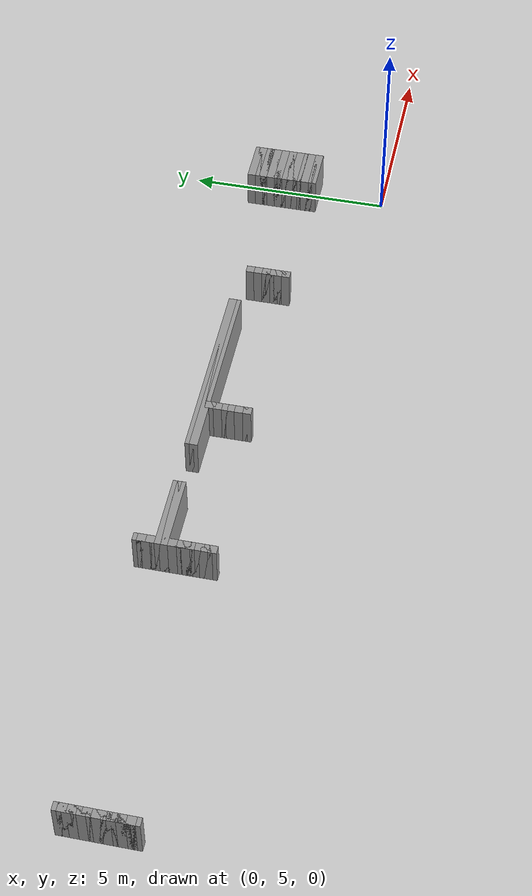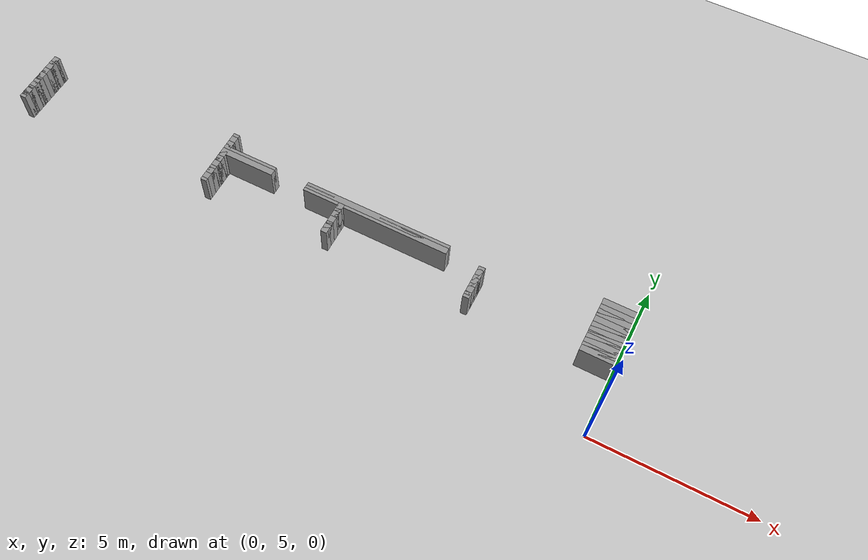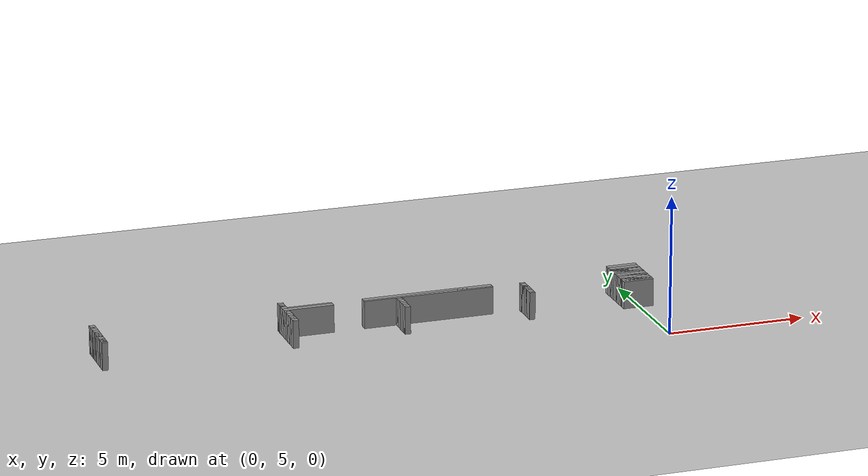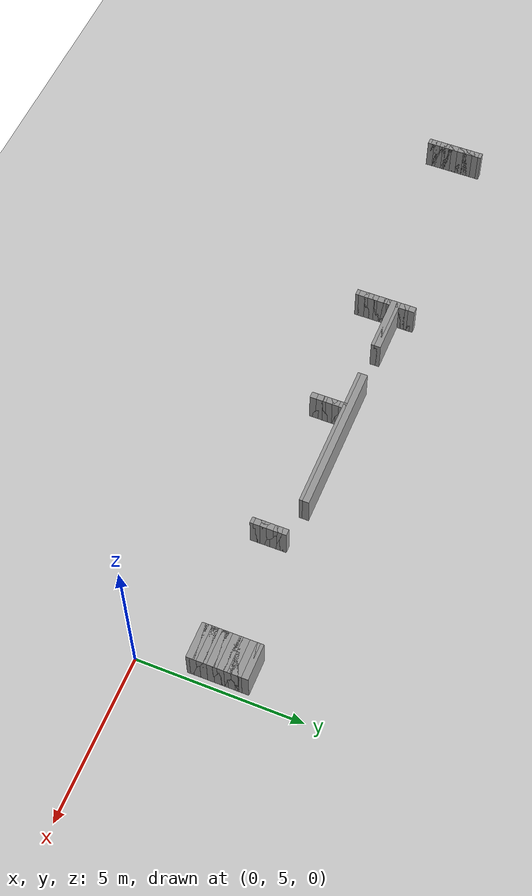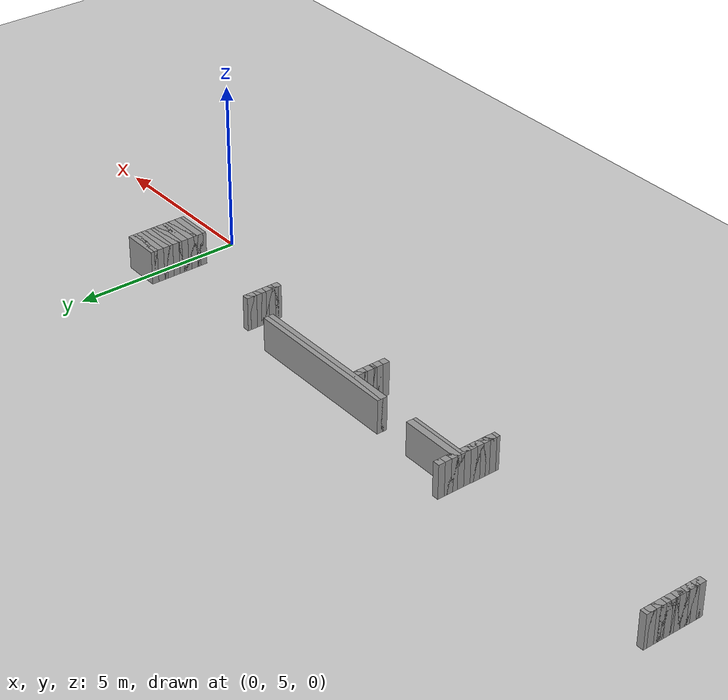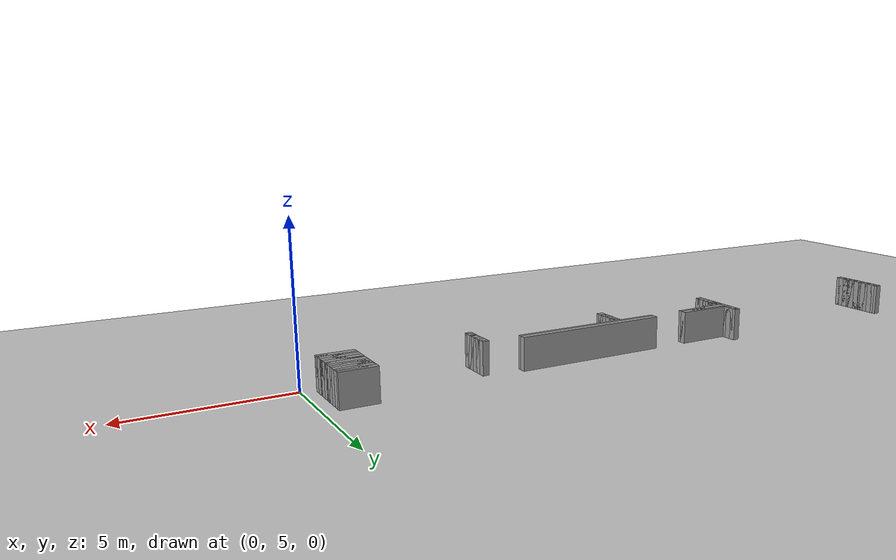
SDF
<sdf version="1.6">
 <world name="GridMap">
  <include><uri>model://sun</uri></include>
  <include><uri>model://ground_plane</uri></include>
  <model name="GridMap">
   <link name="Wall_(131.0,66.0)">
    <collision name="Wall_(131.0,66.0)_Collision">
     <geometry><box><size>0.2 0.2 1.0</size></box></geometry>
     <pose>-13.100000000000001 6.6000000000000005 0.5 0 -0 0</pose>
    </collision>
    <visual name="Wall_(131.0,66.0)_Visual">
     <geometry><box><size>0.2 0.2 1.0</size></box></geometry>
     <pose>-13.100000000000001 6.6000000000000005 0.5 0 -0 0</pose>
     <material>
      <script><uri>file://media/materials/scripts/gazebo.material</uri><name>Gazebo/Grey</name></script>
      <ambient>1 1 1 1</ambient>
     </material>
     <meta><layer>0</layer></meta>
    </visual>
    <pose>0 0 0.5 0 -0 0</pose>
   </link>
   <link name="Wall_(198.0,66.0)">
    <collision name="Wall_(198.0,66.0)_Collision">
     <geometry><box><size>0.2 0.2 1.0</size></box></geometry>
     <pose>-19.8 6.6000000000000005 0.5 0 -0 0</pose>
    </collision>
    <visual name="Wall_(198.0,66.0)_Visual">
     <geometry><box><size>0.2 0.2 1.0</size></box></geometry>
     <pose>-19.8 6.6000000000000005 0.5 0 -0 0</pose>
     <material>
      <script><uri>file://media/materials/scripts/gazebo.material</uri><name>Gazebo/Grey</name></script>
      <ambient>1 1 1 1</ambient>
     </material>
     <meta><layer>0</layer></meta>
    </visual>
    <pose>0 0 0.5 0 -0 0</pose>
   </link>
   <link name="Wall_(5.5,67.0)">
    <collision name="Wall_(5.5,67.0)_Collision">
     <geometry><box><size>1.1 0.2 1.0</size></box></geometry>
     <pose>-0.55 6.7 0.5 0 -0 0</pose>
    </collision>
    <visual name="Wall_(5.5,67.0)_Visual">
     <geometry><box><size>1.1 0.2 1.0</size></box></geometry>
     <pose>-0.55 6.7 0.5 0 -0 0</pose>
     <material>
      <script><uri>file://media/materials/scripts/gazebo.material</uri><name>Gazebo/Grey</name></script>
      <ambient>1 1 1 1</ambient>
     </material>
     <meta><layer>0</layer></meta>
    </visual>
    <pose>0 0 0.5 0 -0 0</pose>
   </link>
   <link name="Wall_(45.0,67.0)">
    <collision name="Wall_(45.0,67.0)_Collision">
     <geometry><box><size>0.2 0.2 1.0</size></box></geometry>
     <pose>-4.5 6.7 0.5 0 -0 0</pose>
    </collision>
    <visual name="Wall_(45.0,67.0)_Visual">
     <geometry><box><size>0.2 0.2 1.0</size></box></geometry>
     <pose>-4.5 6.7 0.5 0 -0 0</pose>
     <material>
      <script><uri>file://media/materials/scripts/gazebo.material</uri><name>Gazebo/Grey</name></script>
      <ambient>1 1 1 1</ambient>
     </material>
     <meta><layer>0</layer></meta>
    </visual>
    <pose>0 0 0.5 0 -0 0</pose>
   </link>
   <link name="Wall_(90.5,67.0)">
    <collision name="Wall_(90.5,67.0)_Collision">
     <geometry><box><size>0.2 0.2 1.0</size></box></geometry>
     <pose>-9.05 6.7 0.5 0 -0 0</pose>
    </collision>
    <visual name="Wall_(90.5,67.0)_Visual">
     <geometry><box><size>0.2 0.2 1.0</size></box></geometry>
     <pose>-9.05 6.7 0.5 0 -0 0</pose>
     <material>
      <script><uri>file://media/materials/scripts/gazebo.material</uri><name>Gazebo/Grey</name></script>
      <ambient>1 1 1 1</ambient>
     </material>
     <meta><layer>0</layer></meta>
    </visual>
    <pose>0 0 0.5 0 -0 0</pose>
   </link>
   <link name="Wall_(131.0,67.0)">
    <collision name="Wall_(131.0,67.0)_Collision">
     <geometry><box><size>0.2 0.2 1.0</size></box></geometry>
     <pose>-13.100000000000001 6.7 0.5 0 -0 0</pose>
    </collision>
    <visual name="Wall_(131.0,67.0)_Visual">
     <geometry><box><size>0.2 0.2 1.0</size></box></geometry>
     <pose>-13.100000000000001 6.7 0.5 0 -0 0</pose>
     <material>
      <script><uri>file://media/materials/scripts/gazebo.material</uri><name>Gazebo/Grey</name></script>
      <ambient>1 1 1 1</ambient>
     </material>
     <meta><layer>0</layer></meta>
    </visual>
    <pose>0 0 0.5 0 -0 0</pose>
   </link>
   <link name="Wall_(198.0,67.0)">
    <collision name="Wall_(198.0,67.0)_Collision">
     <geometry><box><size>0.2 0.2 1.0</size></box></geometry>
     <pose>-19.8 6.7 0.5 0 -0 0</pose>
    </collision>
    <visual name="Wall_(198.0,67.0)_Visual">
     <geometry><box><size>0.2 0.2 1.0</size></box></geometry>
     <pose>-19.8 6.7 0.5 0 -0 0</pose>
     <material>
      <script><uri>file://media/materials/scripts/gazebo.material</uri><name>Gazebo/Grey</name></script>
      <ambient>1 1 1 1</ambient>
     </material>
     <meta><layer>0</layer></meta>
    </visual>
    <pose>0 0 0.5 0 -0 0</pose>
   </link>
   <link name="Wall_(5.5,68.0)">
    <collision name="Wall_(5.5,68.0)_Collision">
     <geometry><box><size>1.1 0.2 1.0</size></box></geometry>
     <pose>-0.55 6.800000000000001 0.5 0 -0 0</pose>
    </collision>
    <visual name="Wall_(5.5,68.0)_Visual">
     <geometry><box><size>1.1 0.2 1.0</size></box></geometry>
     <pose>-0.55 6.800000000000001 0.5 0 -0 0</pose>
     <material>
      <script><uri>file://media/materials/scripts/gazebo.material</uri><name>Gazebo/Grey</name></script>
      <ambient>1 1 1 1</ambient>
     </material>
     <meta><layer>0</layer></meta>
    </visual>
    <pose>0 0 0.5 0 -0 0</pose>
   </link>
   <link name="Wall_(45.0,68.0)">
    <collision name="Wall_(45.0,68.0)_Collision">
     <geometry><box><size>0.2 0.2 1.0</size></box></geometry>
     <pose>-4.5 6.800000000000001 0.5 0 -0 0</pose>
    </collision>
    <visual name="Wall_(45.0,68.0)_Visual">
     <geometry><box><size>0.2 0.2 1.0</size></box></geometry>
     <pose>-4.5 6.800000000000001 0.5 0 -0 0</pose>
     <material>
      <script><uri>file://media/materials/scripts/gazebo.material</uri><name>Gazebo/Grey</name></script>
      <ambient>1 1 1 1</ambient>
     </material>
     <meta><layer>0</layer></meta>
    </visual>
    <pose>0 0 0.5 0 -0 0</pose>
   </link>
   <link name="Wall_(90.5,68.0)">
    <collision name="Wall_(90.5,68.0)_Collision">
     <geometry><box><size>0.2 0.2 1.0</size></box></geometry>
     <pose>-9.05 6.800000000000001 0.5 0 -0 0</pose>
    </collision>
    <visual name="Wall_(90.5,68.0)_Visual">
     <geometry><box><size>0.2 0.2 1.0</size></box></geometry>
     <pose>-9.05 6.800000000000001 0.5 0 -0 0</pose>
     <material>
      <script><uri>file://media/materials/scripts/gazebo.material</uri><name>Gazebo/Grey</name></script>
      <ambient>1 1 1 1</ambient>
     </material>
     <meta><layer>0</layer></meta>
    </visual>
    <pose>0 0 0.5 0 -0 0</pose>
   </link>
   <link name="Wall_(131.0,68.0)">
    <collision name="Wall_(131.0,68.0)_Collision">
     <geometry><box><size>0.2 0.2 1.0</size></box></geometry>
     <pose>-13.100000000000001 6.800000000000001 0.5 0 -0 0</pose>
    </collision>
    <visual name="Wall_(131.0,68.0)_Visual">
     <geometry><box><size>0.2 0.2 1.0</size></box></geometry>
     <pose>-13.100000000000001 6.800000000000001 0.5 0 -0 0</pose>
     <material>
      <script><uri>file://media/materials/scripts/gazebo.material</uri><name>Gazebo/Grey</name></script>
      <ambient>1 1 1 1</ambient>
     </material>
     <meta><layer>0</layer></meta>
    </visual>
    <pose>0 0 0.5 0 -0 0</pose>
   </link>
   <link name="Wall_(198.0,68.0)">
    <collision name="Wall_(198.0,68.0)_Collision">
     <geometry><box><size>0.2 0.2 1.0</size></box></geometry>
     <pose>-19.8 6.800000000000001 0.5 0 -0 0</pose>
    </collision>
    <visual name="Wall_(198.0,68.0)_Visual">
     <geometry><box><size>0.2 0.2 1.0</size></box></geometry>
     <pose>-19.8 6.800000000000001 0.5 0 -0 0</pose>
     <material>
      <script><uri>file://media/materials/scripts/gazebo.material</uri><name>Gazebo/Grey</name></script>
      <ambient>1 1 1 1</ambient>
     </material>
     <meta><layer>0</layer></meta>
    </visual>
    <pose>0 0 0.5 0 -0 0</pose>
   </link>
   <link name="Wall_(5.5,69.0)">
    <collision name="Wall_(5.5,69.0)_Collision">
     <geometry><box><size>1.1 0.2 1.0</size></box></geometry>
     <pose>-0.55 6.9 0.5 0 -0 0</pose>
    </collision>
    <visual name="Wall_(5.5,69.0)_Visual">
     <geometry><box><size>1.1 0.2 1.0</size></box></geometry>
     <pose>-0.55 6.9 0.5 0 -0 0</pose>
     <material>
      <script><uri>file://media/materials/scripts/gazebo.material</uri><name>Gazebo/Grey</name></script>
      <ambient>1 1 1 1</ambient>
     </material>
     <meta><layer>0</layer></meta>
    </visual>
    <pose>0 0 0.5 0 -0 0</pose>
   </link>
   <link name="Wall_(45.0,69.0)">
    <collision name="Wall_(45.0,69.0)_Collision">
     <geometry><box><size>0.2 0.2 1.0</size></box></geometry>
     <pose>-4.5 6.9 0.5 0 -0 0</pose>
    </collision>
    <visual name="Wall_(45.0,69.0)_Visual">
     <geometry><box><size>0.2 0.2 1.0</size></box></geometry>
     <pose>-4.5 6.9 0.5 0 -0 0</pose>
     <material>
      <script><uri>file://media/materials/scripts/gazebo.material</uri><name>Gazebo/Grey</name></script>
      <ambient>1 1 1 1</ambient>
     </material>
     <meta><layer>0</layer></meta>
    </visual>
    <pose>0 0 0.5 0 -0 0</pose>
   </link>
   <link name="Wall_(90.5,69.0)">
    <collision name="Wall_(90.5,69.0)_Collision">
     <geometry><box><size>0.2 0.2 1.0</size></box></geometry>
     <pose>-9.05 6.9 0.5 0 -0 0</pose>
    </collision>
    <visual name="Wall_(90.5,69.0)_Visual">
     <geometry><box><size>0.2 0.2 1.0</size></box></geometry>
     <pose>-9.05 6.9 0.5 0 -0 0</pose>
     <material>
      <script><uri>file://media/materials/scripts/gazebo.material</uri><name>Gazebo/Grey</name></script>
      <ambient>1 1 1 1</ambient>
     </material>
     <meta><layer>0</layer></meta>
    </visual>
    <pose>0 0 0.5 0 -0 0</pose>
   </link>
   <link name="Wall_(131.0,69.0)">
    <collision name="Wall_(131.0,69.0)_Collision">
     <geometry><box><size>0.2 0.2 1.0</size></box></geometry>
     <pose>-13.100000000000001 6.9 0.5 0 -0 0</pose>
    </collision>
    <visual name="Wall_(131.0,69.0)_Visual">
     <geometry><box><size>0.2 0.2 1.0</size></box></geometry>
     <pose>-13.100000000000001 6.9 0.5 0 -0 0</pose>
     <material>
      <script><uri>file://media/materials/scripts/gazebo.material</uri><name>Gazebo/Grey</name></script>
      <ambient>1 1 1 1</ambient>
     </material>
     <meta><layer>0</layer></meta>
    </visual>
    <pose>0 0 0.5 0 -0 0</pose>
   </link>
   <link name="Wall_(198.0,69.0)">
    <collision name="Wall_(198.0,69.0)_Collision">
     <geometry><box><size>0.2 0.2 1.0</size></box></geometry>
     <pose>-19.8 6.9 0.5 0 -0 0</pose>
    </collision>
    <visual name="Wall_(198.0,69.0)_Visual">
     <geometry><box><size>0.2 0.2 1.0</size></box></geometry>
     <pose>-19.8 6.9 0.5 0 -0 0</pose>
     <material>
      <script><uri>file://media/materials/scripts/gazebo.material</uri><name>Gazebo/Grey</name></script>
      <ambient>1 1 1 1</ambient>
     </material>
     <meta><layer>0</layer></meta>
    </visual>
    <pose>0 0 0.5 0 -0 0</pose>
   </link>
   <link name="Wall_(5.5,70.0)">
    <collision name="Wall_(5.5,70.0)_Collision">
     <geometry><box><size>1.1 0.2 1.0</size></box></geometry>
     <pose>-0.55 7.0 0.5 0 -0 0</pose>
    </collision>
    <visual name="Wall_(5.5,70.0)_Visual">
     <geometry><box><size>1.1 0.2 1.0</size></box></geometry>
     <pose>-0.55 7.0 0.5 0 -0 0</pose>
     <material>
      <script><uri>file://media/materials/scripts/gazebo.material</uri><name>Gazebo/Grey</name></script>
      <ambient>1 1 1 1</ambient>
     </material>
     <meta><layer>0</layer></meta>
    </visual>
    <pose>0 0 0.5 0 -0 0</pose>
   </link>
   <link name="Wall_(45.0,70.0)">
    <collision name="Wall_(45.0,70.0)_Collision">
     <geometry><box><size>0.2 0.2 1.0</size></box></geometry>
     <pose>-4.5 7.0 0.5 0 -0 0</pose>
    </collision>
    <visual name="Wall_(45.0,70.0)_Visual">
     <geometry><box><size>0.2 0.2 1.0</size></box></geometry>
     <pose>-4.5 7.0 0.5 0 -0 0</pose>
     <material>
      <script><uri>file://media/materials/scripts/gazebo.material</uri><name>Gazebo/Grey</name></script>
      <ambient>1 1 1 1</ambient>
     </material>
     <meta><layer>0</layer></meta>
    </visual>
    <pose>0 0 0.5 0 -0 0</pose>
   </link>
   <link name="Wall_(90.5,70.0)">
    <collision name="Wall_(90.5,70.0)_Collision">
     <geometry><box><size>0.2 0.2 1.0</size></box></geometry>
     <pose>-9.05 7.0 0.5 0 -0 0</pose>
    </collision>
    <visual name="Wall_(90.5,70.0)_Visual">
     <geometry><box><size>0.2 0.2 1.0</size></box></geometry>
     <pose>-9.05 7.0 0.5 0 -0 0</pose>
     <material>
      <script><uri>file://media/materials/scripts/gazebo.material</uri><name>Gazebo/Grey</name></script>
      <ambient>1 1 1 1</ambient>
     </material>
     <meta><layer>0</layer></meta>
    </visual>
    <pose>0 0 0.5 0 -0 0</pose>
   </link>
   <link name="Wall_(131.0,70.0)">
    <collision name="Wall_(131.0,70.0)_Collision">
     <geometry><box><size>0.2 0.2 1.0</size></box></geometry>
     <pose>-13.100000000000001 7.0 0.5 0 -0 0</pose>
    </collision>
    <visual name="Wall_(131.0,70.0)_Visual">
     <geometry><box><size>0.2 0.2 1.0</size></box></geometry>
     <pose>-13.100000000000001 7.0 0.5 0 -0 0</pose>
     <material>
      <script><uri>file://media/materials/scripts/gazebo.material</uri><name>Gazebo/Grey</name></script>
      <ambient>1 1 1 1</ambient>
     </material>
     <meta><layer>0</layer></meta>
    </visual>
    <pose>0 0 0.5 0 -0 0</pose>
   </link>
   <link name="Wall_(198.0,70.0)">
    <collision name="Wall_(198.0,70.0)_Collision">
     <geometry><box><size>0.2 0.2 1.0</size></box></geometry>
     <pose>-19.8 7.0 0.5 0 -0 0</pose>
    </collision>
    <visual name="Wall_(198.0,70.0)_Visual">
     <geometry><box><size>0.2 0.2 1.0</size></box></geometry>
     <pose>-19.8 7.0 0.5 0 -0 0</pose>
     <material>
      <script><uri>file://media/materials/scripts/gazebo.material</uri><name>Gazebo/Grey</name></script>
      <ambient>1 1 1 1</ambient>
     </material>
     <meta><layer>0</layer></meta>
    </visual>
    <pose>0 0 0.5 0 -0 0</pose>
   </link>
   <link name="Wall_(5.5,71.0)">
    <collision name="Wall_(5.5,71.0)_Collision">
     <geometry><box><size>1.1 0.2 1.0</size></box></geometry>
     <pose>-0.55 7.1000000000000005 0.5 0 -0 0</pose>
    </collision>
    <visual name="Wall_(5.5,71.0)_Visual">
     <geometry><box><size>1.1 0.2 1.0</size></box></geometry>
     <pose>-0.55 7.1000000000000005 0.5 0 -0 0</pose>
     <material>
      <script><uri>file://media/materials/scripts/gazebo.material</uri><name>Gazebo/Grey</name></script>
      <ambient>1 1 1 1</ambient>
     </material>
     <meta><layer>0</layer></meta>
    </visual>
    <pose>0 0 0.5 0 -0 0</pose>
   </link>
   <link name="Wall_(45.0,71.0)">
    <collision name="Wall_(45.0,71.0)_Collision">
     <geometry><box><size>0.2 0.2 1.0</size></box></geometry>
     <pose>-4.5 7.1000000000000005 0.5 0 -0 0</pose>
    </collision>
    <visual name="Wall_(45.0,71.0)_Visual">
     <geometry><box><size>0.2 0.2 1.0</size></box></geometry>
     <pose>-4.5 7.1000000000000005 0.5 0 -0 0</pose>
     <material>
      <script><uri>file://media/materials/scripts/gazebo.material</uri><name>Gazebo/Grey</name></script>
      <ambient>1 1 1 1</ambient>
     </material>
     <meta><layer>0</layer></meta>
    </visual>
    <pose>0 0 0.5 0 -0 0</pose>
   </link>
   <link name="Wall_(90.5,71.0)">
    <collision name="Wall_(90.5,71.0)_Collision">
     <geometry><box><size>0.2 0.2 1.0</size></box></geometry>
     <pose>-9.05 7.1000000000000005 0.5 0 -0 0</pose>
    </collision>
    <visual name="Wall_(90.5,71.0)_Visual">
     <geometry><box><size>0.2 0.2 1.0</size></box></geometry>
     <pose>-9.05 7.1000000000000005 0.5 0 -0 0</pose>
     <material>
      <script><uri>file://media/materials/scripts/gazebo.material</uri><name>Gazebo/Grey</name></script>
      <ambient>1 1 1 1</ambient>
     </material>
     <meta><layer>0</layer></meta>
    </visual>
    <pose>0 0 0.5 0 -0 0</pose>
   </link>
   <link name="Wall_(131.0,71.0)">
    <collision name="Wall_(131.0,71.0)_Collision">
     <geometry><box><size>0.2 0.2 1.0</size></box></geometry>
     <pose>-13.100000000000001 7.1000000000000005 0.5 0 -0 0</pose>
    </collision>
    <visual name="Wall_(131.0,71.0)_Visual">
     <geometry><box><size>0.2 0.2 1.0</size></box></geometry>
     <pose>-13.100000000000001 7.1000000000000005 0.5 0 -0 0</pose>
     <material>
      <script><uri>file://media/materials/scripts/gazebo.material</uri><name>Gazebo/Grey</name></script>
      <ambient>1 1 1 1</ambient>
     </material>
     <meta><layer>0</layer></meta>
    </visual>
    <pose>0 0 0.5 0 -0 0</pose>
   </link>
   <link name="Wall_(198.0,71.0)">
    <collision name="Wall_(198.0,71.0)_Collision">
     <geometry><box><size>0.2 0.2 1.0</size></box></geometry>
     <pose>-19.8 7.1000000000000005 0.5 0 -0 0</pose>
    </collision>
    <visual name="Wall_(198.0,71.0)_Visual">
     <geometry><box><size>0.2 0.2 1.0</size></box></geometry>
     <pose>-19.8 7.1000000000000005 0.5 0 -0 0</pose>
     <material>
      <script><uri>file://media/materials/scripts/gazebo.material</uri><name>Gazebo/Grey</name></script>
      <ambient>1 1 1 1</ambient>
     </material>
     <meta><layer>0</layer></meta>
    </visual>
    <pose>0 0 0.5 0 -0 0</pose>
   </link>
   <link name="Wall_(5.5,72.0)">
    <collision name="Wall_(5.5,72.0)_Collision">
     <geometry><box><size>1.1 0.2 1.0</size></box></geometry>
     <pose>-0.55 7.2 0.5 0 -0 0</pose>
    </collision>
    <visual name="Wall_(5.5,72.0)_Visual">
     <geometry><box><size>1.1 0.2 1.0</size></box></geometry>
     <pose>-0.55 7.2 0.5 0 -0 0</pose>
     <material>
      <script><uri>file://media/materials/scripts/gazebo.material</uri><name>Gazebo/Grey</name></script>
      <ambient>1 1 1 1</ambient>
     </material>
     <meta><layer>0</layer></meta>
    </visual>
    <pose>0 0 0.5 0 -0 0</pose>
   </link>
   <link name="Wall_(45.0,72.0)">
    <collision name="Wall_(45.0,72.0)_Collision">
     <geometry><box><size>0.2 0.2 1.0</size></box></geometry>
     <pose>-4.5 7.2 0.5 0 -0 0</pose>
    </collision>
    <visual name="Wall_(45.0,72.0)_Visual">
     <geometry><box><size>0.2 0.2 1.0</size></box></geometry>
     <pose>-4.5 7.2 0.5 0 -0 0</pose>
     <material>
      <script><uri>file://media/materials/scripts/gazebo.material</uri><name>Gazebo/Grey</name></script>
      <ambient>1 1 1 1</ambient>
     </material>
     <meta><layer>0</layer></meta>
    </visual>
    <pose>0 0 0.5 0 -0 0</pose>
   </link>
   <link name="Wall_(90.5,72.0)">
    <collision name="Wall_(90.5,72.0)_Collision">
     <geometry><box><size>0.2 0.2 1.0</size></box></geometry>
     <pose>-9.05 7.2 0.5 0 -0 0</pose>
    </collision>
    <visual name="Wall_(90.5,72.0)_Visual">
     <geometry><box><size>0.2 0.2 1.0</size></box></geometry>
     <pose>-9.05 7.2 0.5 0 -0 0</pose>
     <material>
      <script><uri>file://media/materials/scripts/gazebo.material</uri><name>Gazebo/Grey</name></script>
      <ambient>1 1 1 1</ambient>
     </material>
     <meta><layer>0</layer></meta>
    </visual>
    <pose>0 0 0.5 0 -0 0</pose>
   </link>
   <link name="Wall_(131.0,72.0)">
    <collision name="Wall_(131.0,72.0)_Collision">
     <geometry><box><size>0.2 0.2 1.0</size></box></geometry>
     <pose>-13.100000000000001 7.2 0.5 0 -0 0</pose>
    </collision>
    <visual name="Wall_(131.0,72.0)_Visual">
     <geometry><box><size>0.2 0.2 1.0</size></box></geometry>
     <pose>-13.100000000000001 7.2 0.5 0 -0 0</pose>
     <material>
      <script><uri>file://media/materials/scripts/gazebo.material</uri><name>Gazebo/Grey</name></script>
      <ambient>1 1 1 1</ambient>
     </material>
     <meta><layer>0</layer></meta>
    </visual>
    <pose>0 0 0.5 0 -0 0</pose>
   </link>
   <link name="Wall_(198.0,72.0)">
    <collision name="Wall_(198.0,72.0)_Collision">
     <geometry><box><size>0.2 0.2 1.0</size></box></geometry>
     <pose>-19.8 7.2 0.5 0 -0 0</pose>
    </collision>
    <visual name="Wall_(198.0,72.0)_Visual">
     <geometry><box><size>0.2 0.2 1.0</size></box></geometry>
     <pose>-19.8 7.2 0.5 0 -0 0</pose>
     <material>
      <script><uri>file://media/materials/scripts/gazebo.material</uri><name>Gazebo/Grey</name></script>
      <ambient>1 1 1 1</ambient>
     </material>
     <meta><layer>0</layer></meta>
    </visual>
    <pose>0 0 0.5 0 -0 0</pose>
   </link>
   <link name="Wall_(5.5,73.0)">
    <collision name="Wall_(5.5,73.0)_Collision">
     <geometry><box><size>1.1 0.2 1.0</size></box></geometry>
     <pose>-0.55 7.300000000000001 0.5 0 -0 0</pose>
    </collision>
    <visual name="Wall_(5.5,73.0)_Visual">
     <geometry><box><size>1.1 0.2 1.0</size></box></geometry>
     <pose>-0.55 7.300000000000001 0.5 0 -0 0</pose>
     <material>
      <script><uri>file://media/materials/scripts/gazebo.material</uri><name>Gazebo/Grey</name></script>
      <ambient>1 1 1 1</ambient>
     </material>
     <meta><layer>0</layer></meta>
    </visual>
    <pose>0 0 0.5 0 -0 0</pose>
   </link>
   <link name="Wall_(45.0,73.0)">
    <collision name="Wall_(45.0,73.0)_Collision">
     <geometry><box><size>0.2 0.2 1.0</size></box></geometry>
     <pose>-4.5 7.300000000000001 0.5 0 -0 0</pose>
    </collision>
    <visual name="Wall_(45.0,73.0)_Visual">
     <geometry><box><size>0.2 0.2 1.0</size></box></geometry>
     <pose>-4.5 7.300000000000001 0.5 0 -0 0</pose>
     <material>
      <script><uri>file://media/materials/scripts/gazebo.material</uri><name>Gazebo/Grey</name></script>
      <ambient>1 1 1 1</ambient>
     </material>
     <meta><layer>0</layer></meta>
    </visual>
    <pose>0 0 0.5 0 -0 0</pose>
   </link>
   <link name="Wall_(90.5,73.0)">
    <collision name="Wall_(90.5,73.0)_Collision">
     <geometry><box><size>0.2 0.2 1.0</size></box></geometry>
     <pose>-9.05 7.300000000000001 0.5 0 -0 0</pose>
    </collision>
    <visual name="Wall_(90.5,73.0)_Visual">
     <geometry><box><size>0.2 0.2 1.0</size></box></geometry>
     <pose>-9.05 7.300000000000001 0.5 0 -0 0</pose>
     <material>
      <script><uri>file://media/materials/scripts/gazebo.material</uri><name>Gazebo/Grey</name></script>
      <ambient>1 1 1 1</ambient>
     </material>
     <meta><layer>0</layer></meta>
    </visual>
    <pose>0 0 0.5 0 -0 0</pose>
   </link>
   <link name="Wall_(131.0,73.0)">
    <collision name="Wall_(131.0,73.0)_Collision">
     <geometry><box><size>0.2 0.2 1.0</size></box></geometry>
     <pose>-13.100000000000001 7.300000000000001 0.5 0 -0 0</pose>
    </collision>
    <visual name="Wall_(131.0,73.0)_Visual">
     <geometry><box><size>0.2 0.2 1.0</size></box></geometry>
     <pose>-13.100000000000001 7.300000000000001 0.5 0 -0 0</pose>
     <material>
      <script><uri>file://media/materials/scripts/gazebo.material</uri><name>Gazebo/Grey</name></script>
      <ambient>1 1 1 1</ambient>
     </material>
     <meta><layer>0</layer></meta>
    </visual>
    <pose>0 0 0.5 0 -0 0</pose>
   </link>
   <link name="Wall_(198.0,73.0)">
    <collision name="Wall_(198.0,73.0)_Collision">
     <geometry><box><size>0.2 0.2 1.0</size></box></geometry>
     <pose>-19.8 7.300000000000001 0.5 0 -0 0</pose>
    </collision>
    <visual name="Wall_(198.0,73.0)_Visual">
     <geometry><box><size>0.2 0.2 1.0</size></box></geometry>
     <pose>-19.8 7.300000000000001 0.5 0 -0 0</pose>
     <material>
      <script><uri>file://media/materials/scripts/gazebo.material</uri><name>Gazebo/Grey</name></script>
      <ambient>1 1 1 1</ambient>
     </material>
     <meta><layer>0</layer></meta>
    </visual>
    <pose>0 0 0.5 0 -0 0</pose>
   </link>
   <link name="Wall_(5.5,74.0)">
    <collision name="Wall_(5.5,74.0)_Collision">
     <geometry><box><size>1.1 0.2 1.0</size></box></geometry>
     <pose>-0.55 7.4 0.5 0 -0 0</pose>
    </collision>
    <visual name="Wall_(5.5,74.0)_Visual">
     <geometry><box><size>1.1 0.2 1.0</size></box></geometry>
     <pose>-0.55 7.4 0.5 0 -0 0</pose>
     <material>
      <script><uri>file://media/materials/scripts/gazebo.material</uri><name>Gazebo/Grey</name></script>
      <ambient>1 1 1 1</ambient>
     </material>
     <meta><layer>0</layer></meta>
    </visual>
    <pose>0 0 0.5 0 -0 0</pose>
   </link>
   <link name="Wall_(45.0,74.0)">
    <collision name="Wall_(45.0,74.0)_Collision">
     <geometry><box><size>0.2 0.2 1.0</size></box></geometry>
     <pose>-4.5 7.4 0.5 0 -0 0</pose>
    </collision>
    <visual name="Wall_(45.0,74.0)_Visual">
     <geometry><box><size>0.2 0.2 1.0</size></box></geometry>
     <pose>-4.5 7.4 0.5 0 -0 0</pose>
     <material>
      <script><uri>file://media/materials/scripts/gazebo.material</uri><name>Gazebo/Grey</name></script>
      <ambient>1 1 1 1</ambient>
     </material>
     <meta><layer>0</layer></meta>
    </visual>
    <pose>0 0 0.5 0 -0 0</pose>
   </link>
   <link name="Wall_(90.5,74.0)">
    <collision name="Wall_(90.5,74.0)_Collision">
     <geometry><box><size>0.2 0.2 1.0</size></box></geometry>
     <pose>-9.05 7.4 0.5 0 -0 0</pose>
    </collision>
    <visual name="Wall_(90.5,74.0)_Visual">
     <geometry><box><size>0.2 0.2 1.0</size></box></geometry>
     <pose>-9.05 7.4 0.5 0 -0 0</pose>
     <material>
      <script><uri>file://media/materials/scripts/gazebo.material</uri><name>Gazebo/Grey</name></script>
      <ambient>1 1 1 1</ambient>
     </material>
     <meta><layer>0</layer></meta>
    </visual>
    <pose>0 0 0.5 0 -0 0</pose>
   </link>
   <link name="Wall_(131.0,74.0)">
    <collision name="Wall_(131.0,74.0)_Collision">
     <geometry><box><size>0.2 0.2 1.0</size></box></geometry>
     <pose>-13.100000000000001 7.4 0.5 0 -0 0</pose>
    </collision>
    <visual name="Wall_(131.0,74.0)_Visual">
     <geometry><box><size>0.2 0.2 1.0</size></box></geometry>
     <pose>-13.100000000000001 7.4 0.5 0 -0 0</pose>
     <material>
      <script><uri>file://media/materials/scripts/gazebo.material</uri><name>Gazebo/Grey</name></script>
      <ambient>1 1 1 1</ambient>
     </material>
     <meta><layer>0</layer></meta>
    </visual>
    <pose>0 0 0.5 0 -0 0</pose>
   </link>
   <link name="Wall_(198.0,74.0)">
    <collision name="Wall_(198.0,74.0)_Collision">
     <geometry><box><size>0.2 0.2 1.0</size></box></geometry>
     <pose>-19.8 7.4 0.5 0 -0 0</pose>
    </collision>
    <visual name="Wall_(198.0,74.0)_Visual">
     <geometry><box><size>0.2 0.2 1.0</size></box></geometry>
     <pose>-19.8 7.4 0.5 0 -0 0</pose>
     <material>
      <script><uri>file://media/materials/scripts/gazebo.material</uri><name>Gazebo/Grey</name></script>
      <ambient>1 1 1 1</ambient>
     </material>
     <meta><layer>0</layer></meta>
    </visual>
    <pose>0 0 0.5 0 -0 0</pose>
   </link>
   <link name="Wall_(5.5,75.0)">
    <collision name="Wall_(5.5,75.0)_Collision">
     <geometry><box><size>1.1 0.2 1.0</size></box></geometry>
     <pose>-0.55 7.5 0.5 0 -0 0</pose>
    </collision>
    <visual name="Wall_(5.5,75.0)_Visual">
     <geometry><box><size>1.1 0.2 1.0</size></box></geometry>
     <pose>-0.55 7.5 0.5 0 -0 0</pose>
     <material>
      <script><uri>file://media/materials/scripts/gazebo.material</uri><name>Gazebo/Grey</name></script>
      <ambient>1 1 1 1</ambient>
     </material>
     <meta><layer>0</layer></meta>
    </visual>
    <pose>0 0 0.5 0 -0 0</pose>
   </link>
   <link name="Wall_(45.0,75.0)">
    <collision name="Wall_(45.0,75.0)_Collision">
     <geometry><box><size>0.2 0.2 1.0</size></box></geometry>
     <pose>-4.5 7.5 0.5 0 -0 0</pose>
    </collision>
    <visual name="Wall_(45.0,75.0)_Visual">
     <geometry><box><size>0.2 0.2 1.0</size></box></geometry>
     <pose>-4.5 7.5 0.5 0 -0 0</pose>
     <material>
      <script><uri>file://media/materials/scripts/gazebo.material</uri><name>Gazebo/Grey</name></script>
      <ambient>1 1 1 1</ambient>
     </material>
     <meta><layer>0</layer></meta>
    </visual>
    <pose>0 0 0.5 0 -0 0</pose>
   </link>
   <link name="Wall_(90.5,75.0)">
    <collision name="Wall_(90.5,75.0)_Collision">
     <geometry><box><size>0.2 0.2 1.0</size></box></geometry>
     <pose>-9.05 7.5 0.5 0 -0 0</pose>
    </collision>
    <visual name="Wall_(90.5,75.0)_Visual">
     <geometry><box><size>0.2 0.2 1.0</size></box></geometry>
     <pose>-9.05 7.5 0.5 0 -0 0</pose>
     <material>
      <script><uri>file://media/materials/scripts/gazebo.material</uri><name>Gazebo/Grey</name></script>
      <ambient>1 1 1 1</ambient>
     </material>
     <meta><layer>0</layer></meta>
    </visual>
    <pose>0 0 0.5 0 -0 0</pose>
   </link>
   <link name="Wall_(131.0,75.0)">
    <collision name="Wall_(131.0,75.0)_Collision">
     <geometry><box><size>0.2 0.2 1.0</size></box></geometry>
     <pose>-13.100000000000001 7.5 0.5 0 -0 0</pose>
    </collision>
    <visual name="Wall_(131.0,75.0)_Visual">
     <geometry><box><size>0.2 0.2 1.0</size></box></geometry>
     <pose>-13.100000000000001 7.5 0.5 0 -0 0</pose>
     <material>
      <script><uri>file://media/materials/scripts/gazebo.material</uri><name>Gazebo/Grey</name></script>
      <ambient>1 1 1 1</ambient>
     </material>
     <meta><layer>0</layer></meta>
    </visual>
    <pose>0 0 0.5 0 -0 0</pose>
   </link>
   <link name="Wall_(198.0,75.0)">
    <collision name="Wall_(198.0,75.0)_Collision">
     <geometry><box><size>0.2 0.2 1.0</size></box></geometry>
     <pose>-19.8 7.5 0.5 0 -0 0</pose>
    </collision>
    <visual name="Wall_(198.0,75.0)_Visual">
     <geometry><box><size>0.2 0.2 1.0</size></box></geometry>
     <pose>-19.8 7.5 0.5 0 -0 0</pose>
     <material>
      <script><uri>file://media/materials/scripts/gazebo.material</uri><name>Gazebo/Grey</name></script>
      <ambient>1 1 1 1</ambient>
     </material>
     <meta><layer>0</layer></meta>
    </visual>
    <pose>0 0 0.5 0 -0 0</pose>
   </link>
   <link name="Wall_(5.5,76.0)">
    <collision name="Wall_(5.5,76.0)_Collision">
     <geometry><box><size>1.1 0.2 1.0</size></box></geometry>
     <pose>-0.55 7.6000000000000005 0.5 0 -0 0</pose>
    </collision>
    <visual name="Wall_(5.5,76.0)_Visual">
     <geometry><box><size>1.1 0.2 1.0</size></box></geometry>
     <pose>-0.55 7.6000000000000005 0.5 0 -0 0</pose>
     <material>
      <script><uri>file://media/materials/scripts/gazebo.material</uri><name>Gazebo/Grey</name></script>
      <ambient>1 1 1 1</ambient>
     </material>
     <meta><layer>0</layer></meta>
    </visual>
    <pose>0 0 0.5 0 -0 0</pose>
   </link>
   <link name="Wall_(45.0,76.0)">
    <collision name="Wall_(45.0,76.0)_Collision">
     <geometry><box><size>0.2 0.2 1.0</size></box></geometry>
     <pose>-4.5 7.6000000000000005 0.5 0 -0 0</pose>
    </collision>
    <visual name="Wall_(45.0,76.0)_Visual">
     <geometry><box><size>0.2 0.2 1.0</size></box></geometry>
     <pose>-4.5 7.6000000000000005 0.5 0 -0 0</pose>
     <material>
      <script><uri>file://media/materials/scripts/gazebo.material</uri><name>Gazebo/Grey</name></script>
      <ambient>1 1 1 1</ambient>
     </material>
     <meta><layer>0</layer></meta>
    </visual>
    <pose>0 0 0.5 0 -0 0</pose>
   </link>
   <link name="Wall_(90.5,76.0)">
    <collision name="Wall_(90.5,76.0)_Collision">
     <geometry><box><size>0.2 0.2 1.0</size></box></geometry>
     <pose>-9.05 7.6000000000000005 0.5 0 -0 0</pose>
    </collision>
    <visual name="Wall_(90.5,76.0)_Visual">
     <geometry><box><size>0.2 0.2 1.0</size></box></geometry>
     <pose>-9.05 7.6000000000000005 0.5 0 -0 0</pose>
     <material>
      <script><uri>file://media/materials/scripts/gazebo.material</uri><name>Gazebo/Grey</name></script>
      <ambient>1 1 1 1</ambient>
     </material>
     <meta><layer>0</layer></meta>
    </visual>
    <pose>0 0 0.5 0 -0 0</pose>
   </link>
   <link name="Wall_(131.0,76.0)">
    <collision name="Wall_(131.0,76.0)_Collision">
     <geometry><box><size>0.2 0.2 1.0</size></box></geometry>
     <pose>-13.100000000000001 7.6000000000000005 0.5 0 -0 0</pose>
    </collision>
    <visual name="Wall_(131.0,76.0)_Visual">
     <geometry><box><size>0.2 0.2 1.0</size></box></geometry>
     <pose>-13.100000000000001 7.6000000000000005 0.5 0 -0 0</pose>
     <material>
      <script><uri>file://media/materials/scripts/gazebo.material</uri><name>Gazebo/Grey</name></script>
      <ambient>1 1 1 1</ambient>
     </material>
     <meta><layer>0</layer></meta>
    </visual>
    <pose>0 0 0.5 0 -0 0</pose>
   </link>
   <link name="Wall_(198.0,76.0)">
    <collision name="Wall_(198.0,76.0)_Collision">
     <geometry><box><size>0.2 0.2 1.0</size></box></geometry>
     <pose>-19.8 7.6000000000000005 0.5 0 -0 0</pose>
    </collision>
    <visual name="Wall_(198.0,76.0)_Visual">
     <geometry><box><size>0.2 0.2 1.0</size></box></geometry>
     <pose>-19.8 7.6000000000000005 0.5 0 -0 0</pose>
     <material>
      <script><uri>file://media/materials/scripts/gazebo.material</uri><name>Gazebo/Grey</name></script>
      <ambient>1 1 1 1</ambient>
     </material>
     <meta><layer>0</layer></meta>
    </visual>
    <pose>0 0 0.5 0 -0 0</pose>
   </link>
   <link name="Wall_(5.5,77.0)">
    <collision name="Wall_(5.5,77.0)_Collision">
     <geometry><box><size>1.1 0.2 1.0</size></box></geometry>
     <pose>-0.55 7.7 0.5 0 -0 0</pose>
    </collision>
    <visual name="Wall_(5.5,77.0)_Visual">
     <geometry><box><size>1.1 0.2 1.0</size></box></geometry>
     <pose>-0.55 7.7 0.5 0 -0 0</pose>
     <material>
      <script><uri>file://media/materials/scripts/gazebo.material</uri><name>Gazebo/Grey</name></script>
      <ambient>1 1 1 1</ambient>
     </material>
     <meta><layer>0</layer></meta>
    </visual>
    <pose>0 0 0.5 0 -0 0</pose>
   </link>
   <link name="Wall_(79.5,77.0)">
    <collision name="Wall_(79.5,77.0)_Collision">
     <geometry><box><size>4.7 0.2 1.0</size></box></geometry>
     <pose>-7.95 7.7 0.5 0 -0 0</pose>
    </collision>
    <visual name="Wall_(79.5,77.0)_Visual">
     <geometry><box><size>4.7 0.2 1.0</size></box></geometry>
     <pose>-7.95 7.7 0.5 0 -0 0</pose>
     <material>
      <script><uri>file://media/materials/scripts/gazebo.material</uri><name>Gazebo/Grey</name></script>
      <ambient>1 1 1 1</ambient>
     </material>
     <meta><layer>0</layer></meta>
    </visual>
    <pose>0 0 0.5 0 -0 0</pose>
   </link>
   <link name="Wall_(123.0,77.0)">
    <collision name="Wall_(123.0,77.0)_Collision">
     <geometry><box><size>1.8 0.2 1.0</size></box></geometry>
     <pose>-12.3 7.7 0.5 0 -0 0</pose>
    </collision>
    <visual name="Wall_(123.0,77.0)_Visual">
     <geometry><box><size>1.8 0.2 1.0</size></box></geometry>
     <pose>-12.3 7.7 0.5 0 -0 0</pose>
     <material>
      <script><uri>file://media/materials/scripts/gazebo.material</uri><name>Gazebo/Grey</name></script>
      <ambient>1 1 1 1</ambient>
     </material>
     <meta><layer>0</layer></meta>
    </visual>
    <pose>0 0 0.5 0 -0 0</pose>
   </link>
   <link name="Wall_(198.0,77.0)">
    <collision name="Wall_(198.0,77.0)_Collision">
     <geometry><box><size>0.2 0.2 1.0</size></box></geometry>
     <pose>-19.8 7.7 0.5 0 -0 0</pose>
    </collision>
    <visual name="Wall_(198.0,77.0)_Visual">
     <geometry><box><size>0.2 0.2 1.0</size></box></geometry>
     <pose>-19.8 7.7 0.5 0 -0 0</pose>
     <material>
      <script><uri>file://media/materials/scripts/gazebo.material</uri><name>Gazebo/Grey</name></script>
      <ambient>1 1 1 1</ambient>
     </material>
     <meta><layer>0</layer></meta>
    </visual>
    <pose>0 0 0.5 0 -0 0</pose>
   </link>
   <link name="Wall_(5.5,78.0)">
    <collision name="Wall_(5.5,78.0)_Collision">
     <geometry><box><size>1.1 0.2 1.0</size></box></geometry>
     <pose>-0.55 7.800000000000001 0.5 0 -0 0</pose>
    </collision>
    <visual name="Wall_(5.5,78.0)_Visual">
     <geometry><box><size>1.1 0.2 1.0</size></box></geometry>
     <pose>-0.55 7.800000000000001 0.5 0 -0 0</pose>
     <material>
      <script><uri>file://media/materials/scripts/gazebo.material</uri><name>Gazebo/Grey</name></script>
      <ambient>1 1 1 1</ambient>
     </material>
     <meta><layer>0</layer></meta>
    </visual>
    <pose>0 0 0.5 0 -0 0</pose>
   </link>
   <link name="Wall_(79.5,78.0)">
    <collision name="Wall_(79.5,78.0)_Collision">
     <geometry><box><size>4.7 0.2 1.0</size></box></geometry>
     <pose>-7.95 7.800000000000001 0.5 0 -0 0</pose>
    </collision>
    <visual name="Wall_(79.5,78.0)_Visual">
     <geometry><box><size>4.7 0.2 1.0</size></box></geometry>
     <pose>-7.95 7.800000000000001 0.5 0 -0 0</pose>
     <material>
      <script><uri>file://media/materials/scripts/gazebo.material</uri><name>Gazebo/Grey</name></script>
      <ambient>1 1 1 1</ambient>
     </material>
     <meta><layer>0</layer></meta>
    </visual>
    <pose>0 0 0.5 0 -0 0</pose>
   </link>
   <link name="Wall_(123.0,78.0)">
    <collision name="Wall_(123.0,78.0)_Collision">
     <geometry><box><size>1.8 0.2 1.0</size></box></geometry>
     <pose>-12.3 7.800000000000001 0.5 0 -0 0</pose>
    </collision>
    <visual name="Wall_(123.0,78.0)_Visual">
     <geometry><box><size>1.8 0.2 1.0</size></box></geometry>
     <pose>-12.3 7.800000000000001 0.5 0 -0 0</pose>
     <material>
      <script><uri>file://media/materials/scripts/gazebo.material</uri><name>Gazebo/Grey</name></script>
      <ambient>1 1 1 1</ambient>
     </material>
     <meta><layer>0</layer></meta>
    </visual>
    <pose>0 0 0.5 0 -0 0</pose>
   </link>
   <link name="Wall_(198.0,78.0)">
    <collision name="Wall_(198.0,78.0)_Collision">
     <geometry><box><size>0.2 0.2 1.0</size></box></geometry>
     <pose>-19.8 7.800000000000001 0.5 0 -0 0</pose>
    </collision>
    <visual name="Wall_(198.0,78.0)_Visual">
     <geometry><box><size>0.2 0.2 1.0</size></box></geometry>
     <pose>-19.8 7.800000000000001 0.5 0 -0 0</pose>
     <material>
      <script><uri>file://media/materials/scripts/gazebo.material</uri><name>Gazebo/Grey</name></script>
      <ambient>1 1 1 1</ambient>
     </material>
     <meta><layer>0</layer></meta>
    </visual>
    <pose>0 0 0.5 0 -0 0</pose>
   </link>
   <link name="Wall_(5.5,79.0)">
    <collision name="Wall_(5.5,79.0)_Collision">
     <geometry><box><size>1.1 0.2 1.0</size></box></geometry>
     <pose>-0.55 7.9 0.5 0 -0 0</pose>
    </collision>
    <visual name="Wall_(5.5,79.0)_Visual">
     <geometry><box><size>1.1 0.2 1.0</size></box></geometry>
     <pose>-0.55 7.9 0.5 0 -0 0</pose>
     <material>
      <script><uri>file://media/materials/scripts/gazebo.material</uri><name>Gazebo/Grey</name></script>
      <ambient>1 1 1 1</ambient>
     </material>
     <meta><layer>0</layer></meta>
    </visual>
    <pose>0 0 0.5 0 -0 0</pose>
   </link>
   <link name="Wall_(131.0,79.0)">
    <collision name="Wall_(131.0,79.0)_Collision">
     <geometry><box><size>0.2 0.2 1.0</size></box></geometry>
     <pose>-13.100000000000001 7.9 0.5 0 -0 0</pose>
    </collision>
    <visual name="Wall_(131.0,79.0)_Visual">
     <geometry><box><size>0.2 0.2 1.0</size></box></geometry>
     <pose>-13.100000000000001 7.9 0.5 0 -0 0</pose>
     <material>
      <script><uri>file://media/materials/scripts/gazebo.material</uri><name>Gazebo/Grey</name></script>
      <ambient>1 1 1 1</ambient>
     </material>
     <meta><layer>0</layer></meta>
    </visual>
    <pose>0 0 0.5 0 -0 0</pose>
   </link>
   <link name="Wall_(198.0,79.0)">
    <collision name="Wall_(198.0,79.0)_Collision">
     <geometry><box><size>0.2 0.2 1.0</size></box></geometry>
     <pose>-19.8 7.9 0.5 0 -0 0</pose>
    </collision>
    <visual name="Wall_(198.0,79.0)_Visual">
     <geometry><box><size>0.2 0.2 1.0</size></box></geometry>
     <pose>-19.8 7.9 0.5 0 -0 0</pose>
     <material>
      <script><uri>file://media/materials/scripts/gazebo.material</uri><name>Gazebo/Grey</name></script>
      <ambient>1 1 1 1</ambient>
     </material>
     <meta><layer>0</layer></meta>
    </visual>
    <pose>0 0 0.5 0 -0 0</pose>
   </link>
   <link name="Wall_(5.5,80.0)">
    <collision name="Wall_(5.5,80.0)_Collision">
     <geometry><box><size>1.1 0.2 1.0</size></box></geometry>
     <pose>-0.55 8.0 0.5 0 -0 0</pose>
    </collision>
    <visual name="Wall_(5.5,80.0)_Visual">
     <geometry><box><size>1.1 0.2 1.0</size></box></geometry>
     <pose>-0.55 8.0 0.5 0 -0 0</pose>
     <material>
      <script><uri>file://media/materials/scripts/gazebo.material</uri><name>Gazebo/Grey</name></script>
      <ambient>1 1 1 1</ambient>
     </material>
     <meta><layer>0</layer></meta>
    </visual>
    <pose>0 0 0.5 0 -0 0</pose>
   </link>
   <link name="Wall_(131.0,80.0)">
    <collision name="Wall_(131.0,80.0)_Collision">
     <geometry><box><size>0.2 0.2 1.0</size></box></geometry>
     <pose>-13.100000000000001 8.0 0.5 0 -0 0</pose>
    </collision>
    <visual name="Wall_(131.0,80.0)_Visual">
     <geometry><box><size>0.2 0.2 1.0</size></box></geometry>
     <pose>-13.100000000000001 8.0 0.5 0 -0 0</pose>
     <material>
      <script><uri>file://media/materials/scripts/gazebo.material</uri><name>Gazebo/Grey</name></script>
      <ambient>1 1 1 1</ambient>
     </material>
     <meta><layer>0</layer></meta>
    </visual>
    <pose>0 0 0.5 0 -0 0</pose>
   </link>
   <link name="Wall_(198.0,80.0)">
    <collision name="Wall_(198.0,80.0)_Collision">
     <geometry><box><size>0.2 0.2 1.0</size></box></geometry>
     <pose>-19.8 8.0 0.5 0 -0 0</pose>
    </collision>
    <visual name="Wall_(198.0,80.0)_Visual">
     <geometry><box><size>0.2 0.2 1.0</size></box></geometry>
     <pose>-19.8 8.0 0.5 0 -0 0</pose>
     <material>
      <script><uri>file://media/materials/scripts/gazebo.material</uri><name>Gazebo/Grey</name></script>
      <ambient>1 1 1 1</ambient>
     </material>
     <meta><layer>0</layer></meta>
    </visual>
    <pose>0 0 0.5 0 -0 0</pose>
   </link>
   <link name="Wall_(5.5,81.0)">
    <collision name="Wall_(5.5,81.0)_Collision">
     <geometry><box><size>1.1 0.2 1.0</size></box></geometry>
     <pose>-0.55 8.1 0.5 0 -0 0</pose>
    </collision>
    <visual name="Wall_(5.5,81.0)_Visual">
     <geometry><box><size>1.1 0.2 1.0</size></box></geometry>
     <pose>-0.55 8.1 0.5 0 -0 0</pose>
     <material>
      <script><uri>file://media/materials/scripts/gazebo.material</uri><name>Gazebo/Grey</name></script>
      <ambient>1 1 1 1</ambient>
     </material>
     <meta><layer>0</layer></meta>
    </visual>
    <pose>0 0 0.5 0 -0 0</pose>
   </link>
   <link name="Wall_(131.0,81.0)">
    <collision name="Wall_(131.0,81.0)_Collision">
     <geometry><box><size>0.2 0.2 1.0</size></box></geometry>
     <pose>-13.100000000000001 8.1 0.5 0 -0 0</pose>
    </collision>
    <visual name="Wall_(131.0,81.0)_Visual">
     <geometry><box><size>0.2 0.2 1.0</size></box></geometry>
     <pose>-13.100000000000001 8.1 0.5 0 -0 0</pose>
     <material>
      <script><uri>file://media/materials/scripts/gazebo.material</uri><name>Gazebo/Grey</name></script>
      <ambient>1 1 1 1</ambient>
     </material>
     <meta><layer>0</layer></meta>
    </visual>
    <pose>0 0 0.5 0 -0 0</pose>
   </link>
   <link name="Wall_(198.0,81.0)">
    <collision name="Wall_(198.0,81.0)_Collision">
     <geometry><box><size>0.2 0.2 1.0</size></box></geometry>
     <pose>-19.8 8.1 0.5 0 -0 0</pose>
    </collision>
    <visual name="Wall_(198.0,81.0)_Visual">
     <geometry><box><size>0.2 0.2 1.0</size></box></geometry>
     <pose>-19.8 8.1 0.5 0 -0 0</pose>
     <material>
      <script><uri>file://media/materials/scripts/gazebo.material</uri><name>Gazebo/Grey</name></script>
      <ambient>1 1 1 1</ambient>
     </material>
     <meta><layer>0</layer></meta>
    </visual>
    <pose>0 0 0.5 0 -0 0</pose>
   </link>
   <link name="Wall_(5.5,82.0)">
    <collision name="Wall_(5.5,82.0)_Collision">
     <geometry><box><size>1.1 0.2 1.0</size></box></geometry>
     <pose>-0.55 8.200000000000001 0.5 0 -0 0</pose>
    </collision>
    <visual name="Wall_(5.5,82.0)_Visual">
     <geometry><box><size>1.1 0.2 1.0</size></box></geometry>
     <pose>-0.55 8.200000000000001 0.5 0 -0 0</pose>
     <material>
      <script><uri>file://media/materials/scripts/gazebo.material</uri><name>Gazebo/Grey</name></script>
      <ambient>1 1 1 1</ambient>
     </material>
     <meta><layer>0</layer></meta>
    </visual>
    <pose>0 0 0.5 0 -0 0</pose>
   </link>
   <link name="Wall_(131.0,82.0)">
    <collision name="Wall_(131.0,82.0)_Collision">
     <geometry><box><size>0.2 0.2 1.0</size></box></geometry>
     <pose>-13.100000000000001 8.200000000000001 0.5 0 -0 0</pose>
    </collision>
    <visual name="Wall_(131.0,82.0)_Visual">
     <geometry><box><size>0.2 0.2 1.0</size></box></geometry>
     <pose>-13.100000000000001 8.200000000000001 0.5 0 -0 0</pose>
     <material>
      <script><uri>file://media/materials/scripts/gazebo.material</uri><name>Gazebo/Grey</name></script>
      <ambient>1 1 1 1</ambient>
     </material>
     <meta><layer>0</layer></meta>
    </visual>
    <pose>0 0 0.5 0 -0 0</pose>
   </link>
   <link name="Wall_(198.0,82.0)">
    <collision name="Wall_(198.0,82.0)_Collision">
     <geometry><box><size>0.2 0.2 1.0</size></box></geometry>
     <pose>-19.8 8.200000000000001 0.5 0 -0 0</pose>
    </collision>
    <visual name="Wall_(198.0,82.0)_Visual">
     <geometry><box><size>0.2 0.2 1.0</size></box></geometry>
     <pose>-19.8 8.200000000000001 0.5 0 -0 0</pose>
     <material>
      <script><uri>file://media/materials/scripts/gazebo.material</uri><name>Gazebo/Grey</name></script>
      <ambient>1 1 1 1</ambient>
     </material>
     <meta><layer>0</layer></meta>
    </visual>
    <pose>0 0 0.5 0 -0 0</pose>
   </link>
   <link name="Wall_(5.5,83.0)">
    <collision name="Wall_(5.5,83.0)_Collision">
     <geometry><box><size>1.1 0.2 1.0</size></box></geometry>
     <pose>-0.55 8.3 0.5 0 -0 0</pose>
    </collision>
    <visual name="Wall_(5.5,83.0)_Visual">
     <geometry><box><size>1.1 0.2 1.0</size></box></geometry>
     <pose>-0.55 8.3 0.5 0 -0 0</pose>
     <material>
      <script><uri>file://media/materials/scripts/gazebo.material</uri><name>Gazebo/Grey</name></script>
      <ambient>1 1 1 1</ambient>
     </material>
     <meta><layer>0</layer></meta>
    </visual>
    <pose>0 0 0.5 0 -0 0</pose>
   </link>
   <link name="Wall_(131.0,83.0)">
    <collision name="Wall_(131.0,83.0)_Collision">
     <geometry><box><size>0.2 0.2 1.0</size></box></geometry>
     <pose>-13.100000000000001 8.3 0.5 0 -0 0</pose>
    </collision>
    <visual name="Wall_(131.0,83.0)_Visual">
     <geometry><box><size>0.2 0.2 1.0</size></box></geometry>
     <pose>-13.100000000000001 8.3 0.5 0 -0 0</pose>
     <material>
      <script><uri>file://media/materials/scripts/gazebo.material</uri><name>Gazebo/Grey</name></script>
      <ambient>1 1 1 1</ambient>
     </material>
     <meta><layer>0</layer></meta>
    </visual>
    <pose>0 0 0.5 0 -0 0</pose>
   </link>
   <static>1</static>
  </model>
 </world>
</sdf>
